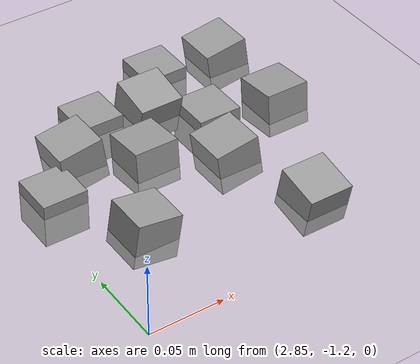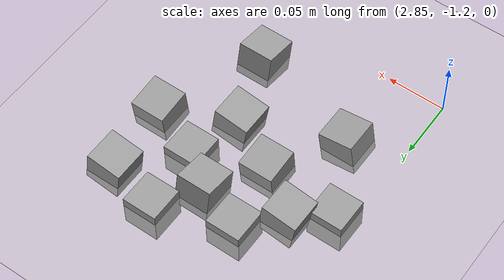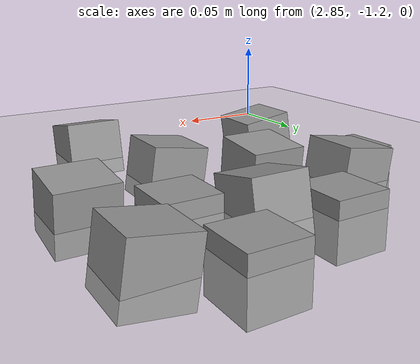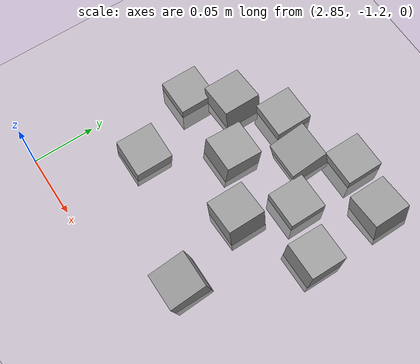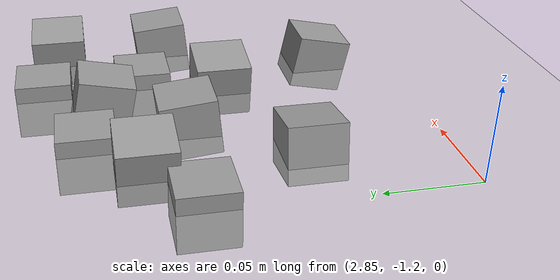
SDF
<sdf version="1.7">
 <world name="default">
  <model name="ground_plane">
   <static>1</static>
   <link name="link">
    <collision name="collision">
     <geometry><plane><normal>0 0 1</normal><size>100 100</size></plane></geometry>
     <surface><friction><ode><mu>100</mu><mu2>50</mu2></ode></friction></surface>
    </collision>
    <visual name="visual">
     <cast_shadows>0</cast_shadows>
     <geometry><plane><normal>0 0 1</normal><size>100 100</size></plane></geometry>
     <material>
      <script><uri>file://media/materials/scripts/gazebo.material</uri><name>Gazebo/Grey</name></script>
     </material>
    </visual>
   </link>
  </model>
  <model name="stone_road_12">
   <link name="link_0_clone_12">
    <inertial>
     <mass>1</mass>
     <inertia>
      <ixx>0.166667</ixx>
      <ixy>0</ixy>
      <ixz>0</ixz>
      <iyy>0.166667</iyy>
      <iyz>0</iyz>
      <izz>0.166667</izz>
     </inertia>
    </inertial>
    <pose>0.142624 -0.262715 0.003778 0.2 -0 0</pose>
    <kinematic>1</kinematic>
    <visual name="visual">
     <geometry><box><size>0.03 0.03 0.03</size></box></geometry>
     <material>
      <lighting>1</lighting>
      <script><uri>file://media/materials/scripts/gazebo.material</uri><name>Gazebo/Grey</name></script>
      <shader type="pixel"><normal_map>__default__</normal_map></shader>
      <ambient>0.3 0.3 0.3 1</ambient>
      <diffuse>0.7 0.7 0.7 1</diffuse>
      <specular>0.01 0.01 0.01 1</specular>
      <emissive>0 0 0 1</emissive>
     </material>
    </visual>
    <collision name="collision">
     <geometry><box><size>0.03 0.03 0.03</size></box></geometry>
     <surface>
      <friction>
       <ode><mu>1</mu><mu2>1</mu2><fdir1>0 0 0</fdir1><slip1>0</slip1><slip2>0</slip2></ode>
       <torsional>
        <coefficient>1</coefficient>
        <patch_radius>0</patch_radius>
        <surface_radius>0</surface_radius>
        <use_patch_radius>1</use_patch_radius>
        <ode><slip>0</slip></ode>
       </torsional>
      </friction>
      <bounce><restitution_coefficient>0</restitution_coefficient><threshold>1e+06</threshold></bounce>
      <contact>
       <collide_without_contact>0</collide_without_contact>
       <collide_without_contact_bitmask>1</collide_without_contact_bitmask>
       <collide_bitmask>1</collide_bitmask>
       <ode>
        <soft_cfm>0</soft_cfm>
        <soft_erp>0.2</soft_erp>
        <kp>1e+13</kp>
        <kd>1</kd>
        <max_vel>0.01</max_vel>
        <min_depth>0</min_depth>
       </ode>
       <bullet>
        <split_impulse>1</split_impulse>
        <split_impulse_penetration_threshold>-0.01</split_impulse_penetration_threshold>
        <soft_cfm>0</soft_cfm>
        <soft_erp>0.2</soft_erp>
        <kp>1e+13</kp>
        <kd>1</kd>
       </bullet>
      </contact>
     </surface>
    </collision>
   </link>
   <link name="link_0_clone_13">
    <inertial>
     <mass>1</mass>
     <inertia>
      <ixx>0.166667</ixx>
      <ixy>0</ixy>
      <ixz>0</ixz>
      <iyy>0.166667</iyy>
      <iyz>0</iyz>
      <izz>0.166667</izz>
     </inertia>
    </inertial>
    <pose>0.107601 -0.134881 0.003778 0.2 -0 0</pose>
    <kinematic>1</kinematic>
    <visual name="visual">
     <geometry><box><size>0.03 0.03 0.03</size></box></geometry>
     <material>
      <lighting>1</lighting>
      <script><uri>file://media/materials/scripts/gazebo.material</uri><name>Gazebo/Grey</name></script>
      <shader type="pixel"><normal_map>__default__</normal_map></shader>
      <ambient>0.3 0.3 0.3 1</ambient>
      <diffuse>0.7 0.7 0.7 1</diffuse>
      <specular>0.01 0.01 0.01 1</specular>
      <emissive>0 0 0 1</emissive>
     </material>
    </visual>
    <collision name="collision">
     <geometry><box><size>0.03 0.03 0.03</size></box></geometry>
     <surface>
      <friction>
       <ode><mu>1</mu><mu2>1</mu2><fdir1>0 0 0</fdir1><slip1>0</slip1><slip2>0</slip2></ode>
       <torsional>
        <coefficient>1</coefficient>
        <patch_radius>0</patch_radius>
        <surface_radius>0</surface_radius>
        <use_patch_radius>1</use_patch_radius>
        <ode><slip>0</slip></ode>
       </torsional>
      </friction>
      <bounce><restitution_coefficient>0</restitution_coefficient><threshold>1e+06</threshold></bounce>
      <contact>
       <collide_without_contact>0</collide_without_contact>
       <collide_without_contact_bitmask>1</collide_without_contact_bitmask>
       <collide_bitmask>1</collide_bitmask>
       <ode>
        <soft_cfm>0</soft_cfm>
        <soft_erp>0.2</soft_erp>
        <kp>1e+13</kp>
        <kd>1</kd>
        <max_vel>0.01</max_vel>
        <min_depth>0</min_depth>
       </ode>
       <bullet>
        <split_impulse>1</split_impulse>
        <split_impulse_penetration_threshold>-0.01</split_impulse_penetration_threshold>
        <soft_cfm>0</soft_cfm>
        <soft_erp>0.2</soft_erp>
        <kp>1e+13</kp>
        <kd>1</kd>
       </bullet>
      </contact>
     </surface>
    </collision>
   </link>
   <link name="link_0_clone_2_clone_2_clone_13_clone_clone_11">
    <inertial>
     <mass>1</mass>
     <inertia>
      <ixx>0.166667</ixx>
      <ixy>0</ixy>
      <ixz>0</ixz>
      <iyy>0.166667</iyy>
      <iyz>0</iyz>
      <izz>0.166667</izz>
     </inertia>
    </inertial>
    <pose>0.178889 -0.173779 0.003778 -0.1 0 0</pose>
    <kinematic>1</kinematic>
    <visual name="visual">
     <geometry><box><size>0.03 0.03 0.03</size></box></geometry>
     <material>
      <lighting>1</lighting>
      <script><uri>file://media/materials/scripts/gazebo.material</uri><name>Gazebo/Grey</name></script>
      <shader type="pixel"><normal_map>__default__</normal_map></shader>
      <ambient>0.3 0.3 0.3 1</ambient>
      <diffuse>0.7 0.7 0.7 1</diffuse>
      <specular>0.01 0.01 0.01 1</specular>
      <emissive>0 0 0 1</emissive>
     </material>
    </visual>
    <collision name="collision">
     <geometry><box><size>0.03 0.03 0.03</size></box></geometry>
     <surface>
      <friction>
       <ode><mu>1</mu><mu2>1</mu2><fdir1>0 0 0</fdir1><slip1>0</slip1><slip2>0</slip2></ode>
       <torsional>
        <coefficient>1</coefficient>
        <patch_radius>0</patch_radius>
        <surface_radius>0</surface_radius>
        <use_patch_radius>1</use_patch_radius>
        <ode><slip>0</slip></ode>
       </torsional>
      </friction>
      <bounce><restitution_coefficient>0</restitution_coefficient><threshold>1e+06</threshold></bounce>
      <contact>
       <collide_without_contact>0</collide_without_contact>
       <collide_without_contact_bitmask>1</collide_without_contact_bitmask>
       <collide_bitmask>1</collide_bitmask>
       <ode>
        <soft_cfm>0</soft_cfm>
        <soft_erp>0.2</soft_erp>
        <kp>1e+13</kp>
        <kd>1</kd>
        <max_vel>0.01</max_vel>
        <min_depth>0</min_depth>
       </ode>
       <bullet>
        <split_impulse>1</split_impulse>
        <split_impulse_penetration_threshold>-0.01</split_impulse_penetration_threshold>
        <soft_cfm>0</soft_cfm>
        <soft_erp>0.2</soft_erp>
        <kp>1e+13</kp>
        <kd>1</kd>
       </bullet>
      </contact>
     </surface>
    </collision>
   </link>
   <link name="link_0_clone_2_clone_2_clone_13_clone_clone_12">
    <inertial>
     <mass>1</mass>
     <inertia>
      <ixx>0.166667</ixx>
      <ixy>0</ixy>
      <ixz>0</ixz>
      <iyy>0.166667</iyy>
      <iyz>0</iyz>
      <izz>0.166667</izz>
     </inertia>
    </inertial>
    <pose>0.078701 -0.177208 0.003778 -0.1 0 0</pose>
    <kinematic>1</kinematic>
    <visual name="visual">
     <geometry><box><size>0.03 0.03 0.03</size></box></geometry>
     <material>
      <lighting>1</lighting>
      <script><uri>file://media/materials/scripts/gazebo.material</uri><name>Gazebo/Grey</name></script>
      <shader type="pixel"><normal_map>__default__</normal_map></shader>
      <ambient>0.3 0.3 0.3 1</ambient>
      <diffuse>0.7 0.7 0.7 1</diffuse>
      <specular>0.01 0.01 0.01 1</specular>
      <emissive>0 0 0 1</emissive>
     </material>
    </visual>
    <collision name="collision">
     <geometry><box><size>0.03 0.03 0.03</size></box></geometry>
     <surface>
      <friction>
       <ode><mu>1</mu><mu2>1</mu2><fdir1>0 0 0</fdir1><slip1>0</slip1><slip2>0</slip2></ode>
       <torsional>
        <coefficient>1</coefficient>
        <patch_radius>0</patch_radius>
        <surface_radius>0</surface_radius>
        <use_patch_radius>1</use_patch_radius>
        <ode><slip>0</slip></ode>
       </torsional>
      </friction>
      <bounce><restitution_coefficient>0</restitution_coefficient><threshold>1e+06</threshold></bounce>
      <contact>
       <collide_without_contact>0</collide_without_contact>
       <collide_without_contact_bitmask>1</collide_without_contact_bitmask>
       <collide_bitmask>1</collide_bitmask>
       <ode>
        <soft_cfm>0</soft_cfm>
        <soft_erp>0.2</soft_erp>
        <kp>1e+13</kp>
        <kd>1</kd>
        <max_vel>0.01</max_vel>
        <min_depth>0</min_depth>
       </ode>
       <bullet>
        <split_impulse>1</split_impulse>
        <split_impulse_penetration_threshold>-0.01</split_impulse_penetration_threshold>
        <soft_cfm>0</soft_cfm>
        <soft_erp>0.2</soft_erp>
        <kp>1e+13</kp>
        <kd>1</kd>
       </bullet>
      </contact>
     </surface>
    </collision>
   </link>
   <link name="link_0_clone_2_clone_2_clone_13_clone_clone_16_clone_15">
    <inertial>
     <mass>1</mass>
     <inertia>
      <ixx>0.166667</ixx>
      <ixy>0</ixy>
      <ixz>0</ixz>
      <iyy>0.166667</iyy>
      <iyz>0</iyz>
      <izz>0.166667</izz>
     </inertia>
    </inertial>
    <pose>0.133032 -0.103459 -0.006222 0 -0 0</pose>
    <kinematic>1</kinematic>
    <visual name="visual">
     <geometry><box><size>0.03 0.03 0.03</size></box></geometry>
     <material>
      <lighting>1</lighting>
      <script><uri>file://media/materials/scripts/gazebo.material</uri><name>Gazebo/Grey</name></script>
      <shader type="pixel"><normal_map>__default__</normal_map></shader>
      <ambient>0.3 0.3 0.3 1</ambient>
      <diffuse>0.7 0.7 0.7 1</diffuse>
      <specular>0.01 0.01 0.01 1</specular>
      <emissive>0 0 0 1</emissive>
     </material>
    </visual>
    <collision name="collision">
     <geometry><box><size>0.03 0.03 0.03</size></box></geometry>
     <surface>
      <friction>
       <ode><mu>1</mu><mu2>1</mu2><fdir1>0 0 0</fdir1><slip1>0</slip1><slip2>0</slip2></ode>
       <torsional>
        <coefficient>1</coefficient>
        <patch_radius>0</patch_radius>
        <surface_radius>0</surface_radius>
        <use_patch_radius>1</use_patch_radius>
        <ode><slip>0</slip></ode>
       </torsional>
      </friction>
      <bounce><restitution_coefficient>0</restitution_coefficient><threshold>1e+06</threshold></bounce>
      <contact>
       <collide_without_contact>0</collide_without_contact>
       <collide_without_contact_bitmask>1</collide_without_contact_bitmask>
       <collide_bitmask>1</collide_bitmask>
       <ode>
        <soft_cfm>0</soft_cfm>
        <soft_erp>0.2</soft_erp>
        <kp>1e+13</kp>
        <kd>1</kd>
        <max_vel>0.01</max_vel>
        <min_depth>0</min_depth>
       </ode>
       <bullet>
        <split_impulse>1</split_impulse>
        <split_impulse_penetration_threshold>-0.01</split_impulse_penetration_threshold>
        <soft_cfm>0</soft_cfm>
        <soft_erp>0.2</soft_erp>
        <kp>1e+13</kp>
        <kd>1</kd>
       </bullet>
      </contact>
     </surface>
    </collision>
   </link>
   <link name="link_0_clone_2_clone_2_clone_13_clone_clone_16_clone_16">
    <inertial>
     <mass>1</mass>
     <inertia>
      <ixx>0.166667</ixx>
      <ixy>0</ixy>
      <ixz>0</ixz>
      <iyy>0.166667</iyy>
      <iyz>0</iyz>
      <izz>0.166667</izz>
     </inertia>
    </inertial>
    <pose>0.071475 -0.124425 -0.006222 0 -0 0</pose>
    <kinematic>1</kinematic>
    <visual name="visual">
     <geometry><box><size>0.03 0.03 0.03</size></box></geometry>
     <material>
      <lighting>1</lighting>
      <script><uri>file://media/materials/scripts/gazebo.material</uri><name>Gazebo/Grey</name></script>
      <shader type="pixel"><normal_map>__default__</normal_map></shader>
      <ambient>0.3 0.3 0.3 1</ambient>
      <diffuse>0.7 0.7 0.7 1</diffuse>
      <specular>0.01 0.01 0.01 1</specular>
      <emissive>0 0 0 1</emissive>
     </material>
    </visual>
    <collision name="collision">
     <geometry><box><size>0.03 0.03 0.03</size></box></geometry>
     <surface>
      <friction>
       <ode><mu>1</mu><mu2>1</mu2><fdir1>0 0 0</fdir1><slip1>0</slip1><slip2>0</slip2></ode>
       <torsional>
        <coefficient>1</coefficient>
        <patch_radius>0</patch_radius>
        <surface_radius>0</surface_radius>
        <use_patch_radius>1</use_patch_radius>
        <ode><slip>0</slip></ode>
       </torsional>
      </friction>
      <bounce><restitution_coefficient>0</restitution_coefficient><threshold>1e+06</threshold></bounce>
      <contact>
       <collide_without_contact>0</collide_without_contact>
       <collide_without_contact_bitmask>1</collide_without_contact_bitmask>
       <collide_bitmask>1</collide_bitmask>
       <ode>
        <soft_cfm>0</soft_cfm>
        <soft_erp>0.2</soft_erp>
        <kp>1e+13</kp>
        <kd>1</kd>
        <max_vel>0.01</max_vel>
        <min_depth>0</min_depth>
       </ode>
       <bullet>
        <split_impulse>1</split_impulse>
        <split_impulse_penetration_threshold>-0.01</split_impulse_penetration_threshold>
        <soft_cfm>0</soft_cfm>
        <soft_erp>0.2</soft_erp>
        <kp>1e+13</kp>
        <kd>1</kd>
       </bullet>
      </contact>
     </surface>
    </collision>
   </link>
   <link name="link_0_clone_2_clone_2_clone_13_clone_clone_16_clone_17">
    <inertial>
     <mass>1</mass>
     <inertia>
      <ixx>0.166667</ixx>
      <ixy>0</ixy>
      <ixz>0</ixz>
      <iyy>0.166667</iyy>
      <iyz>0</iyz>
      <izz>0.166667</izz>
     </inertia>
    </inertial>
    <pose>0.014877 -0.175392 -0.006222 0 -0 0</pose>
    <kinematic>1</kinematic>
    <visual name="visual">
     <geometry><box><size>0.03 0.03 0.03</size></box></geometry>
     <material>
      <lighting>1</lighting>
      <script><uri>file://media/materials/scripts/gazebo.material</uri><name>Gazebo/Grey</name></script>
      <shader type="pixel"><normal_map>__default__</normal_map></shader>
      <ambient>0.3 0.3 0.3 1</ambient>
      <diffuse>0.7 0.7 0.7 1</diffuse>
      <specular>0.01 0.01 0.01 1</specular>
      <emissive>0 0 0 1</emissive>
     </material>
    </visual>
    <collision name="collision">
     <geometry><box><size>0.03 0.03 0.03</size></box></geometry>
     <surface>
      <friction>
       <ode><mu>1</mu><mu2>1</mu2><fdir1>0 0 0</fdir1><slip1>0</slip1><slip2>0</slip2></ode>
       <torsional>
        <coefficient>1</coefficient>
        <patch_radius>0</patch_radius>
        <surface_radius>0</surface_radius>
        <use_patch_radius>1</use_patch_radius>
        <ode><slip>0</slip></ode>
       </torsional>
      </friction>
      <bounce><restitution_coefficient>0</restitution_coefficient><threshold>1e+06</threshold></bounce>
      <contact>
       <collide_without_contact>0</collide_without_contact>
       <collide_without_contact_bitmask>1</collide_without_contact_bitmask>
       <collide_bitmask>1</collide_bitmask>
       <ode>
        <soft_cfm>0</soft_cfm>
        <soft_erp>0.2</soft_erp>
        <kp>1e+13</kp>
        <kd>1</kd>
        <max_vel>0.01</max_vel>
        <min_depth>0</min_depth>
       </ode>
       <bullet>
        <split_impulse>1</split_impulse>
        <split_impulse_penetration_threshold>-0.01</split_impulse_penetration_threshold>
        <soft_cfm>0</soft_cfm>
        <soft_erp>0.2</soft_erp>
        <kp>1e+13</kp>
        <kd>1</kd>
       </bullet>
      </contact>
     </surface>
    </collision>
   </link>
   <link name="link_0_clone_2_clone_2_clone_13_clone_clone_16_clone_18">
    <inertial>
     <mass>1</mass>
     <inertia>
      <ixx>0.166667</ixx>
      <ixy>0</ixy>
      <ixz>0</ixz>
      <iyy>0.166667</iyy>
      <iyz>0</iyz>
      <izz>0.166667</izz>
     </inertia>
    </inertial>
    <pose>0.137197 -0.158693 -0.006222 0 -0 0</pose>
    <kinematic>1</kinematic>
    <visual name="visual">
     <geometry><box><size>0.03 0.03 0.03</size></box></geometry>
     <material>
      <lighting>1</lighting>
      <script><uri>file://media/materials/scripts/gazebo.material</uri><name>Gazebo/Grey</name></script>
      <shader type="pixel"><normal_map>__default__</normal_map></shader>
      <ambient>0.3 0.3 0.3 1</ambient>
      <diffuse>0.7 0.7 0.7 1</diffuse>
      <specular>0.01 0.01 0.01 1</specular>
      <emissive>0 0 0 1</emissive>
     </material>
    </visual>
    <collision name="collision">
     <geometry><box><size>0.03 0.03 0.03</size></box></geometry>
     <surface>
      <friction>
       <ode><mu>1</mu><mu2>1</mu2><fdir1>0 0 0</fdir1><slip1>0</slip1><slip2>0</slip2></ode>
       <torsional>
        <coefficient>1</coefficient>
        <patch_radius>0</patch_radius>
        <surface_radius>0</surface_radius>
        <use_patch_radius>1</use_patch_radius>
        <ode><slip>0</slip></ode>
       </torsional>
      </friction>
      <bounce><restitution_coefficient>0</restitution_coefficient><threshold>1e+06</threshold></bounce>
      <contact>
       <collide_without_contact>0</collide_without_contact>
       <collide_without_contact_bitmask>1</collide_without_contact_bitmask>
       <collide_bitmask>1</collide_bitmask>
       <ode>
        <soft_cfm>0</soft_cfm>
        <soft_erp>0.2</soft_erp>
        <kp>1e+13</kp>
        <kd>1</kd>
        <max_vel>0.01</max_vel>
        <min_depth>0</min_depth>
       </ode>
       <bullet>
        <split_impulse>1</split_impulse>
        <split_impulse_penetration_threshold>-0.01</split_impulse_penetration_threshold>
        <soft_cfm>0</soft_cfm>
        <soft_erp>0.2</soft_erp>
        <kp>1e+13</kp>
        <kd>1</kd>
       </bullet>
      </contact>
     </surface>
    </collision>
   </link>
   <link name="link_0_clone_2_clone_2_clone_4">
    <inertial>
     <mass>1</mass>
     <inertia>
      <ixx>0.166667</ixx>
      <ixy>0</ixy>
      <ixz>0</ixz>
      <iyy>0.166667</iyy>
      <iyz>0</iyz>
      <izz>0.166667</izz>
     </inertia>
    </inertial>
    <pose>0.042048 -0.151731 0.003778 0 -0.15 0</pose>
    <kinematic>1</kinematic>
    <visual name="visual">
     <geometry><box><size>0.03 0.03 0.03</size></box></geometry>
     <material>
      <lighting>1</lighting>
      <script><uri>file://media/materials/scripts/gazebo.material</uri><name>Gazebo/Grey</name></script>
      <shader type="pixel"><normal_map>__default__</normal_map></shader>
      <ambient>0.3 0.3 0.3 1</ambient>
      <diffuse>0.7 0.7 0.7 1</diffuse>
      <specular>0.01 0.01 0.01 1</specular>
      <emissive>0 0 0 1</emissive>
     </material>
    </visual>
    <collision name="collision">
     <geometry><box><size>0.03 0.03 0.03</size></box></geometry>
     <surface>
      <friction>
       <ode><mu>1</mu><mu2>1</mu2><fdir1>0 0 0</fdir1><slip1>0</slip1><slip2>0</slip2></ode>
       <torsional>
        <coefficient>1</coefficient>
        <patch_radius>0</patch_radius>
        <surface_radius>0</surface_radius>
        <use_patch_radius>1</use_patch_radius>
        <ode><slip>0</slip></ode>
       </torsional>
      </friction>
      <bounce><restitution_coefficient>0</restitution_coefficient><threshold>1e+06</threshold></bounce>
      <contact>
       <collide_without_contact>0</collide_without_contact>
       <collide_without_contact_bitmask>1</collide_without_contact_bitmask>
       <collide_bitmask>1</collide_bitmask>
       <ode>
        <soft_cfm>0</soft_cfm>
        <soft_erp>0.2</soft_erp>
        <kp>1e+13</kp>
        <kd>1</kd>
        <max_vel>0.01</max_vel>
        <min_depth>0</min_depth>
       </ode>
       <bullet>
        <split_impulse>1</split_impulse>
        <split_impulse_penetration_threshold>-0.01</split_impulse_penetration_threshold>
        <soft_cfm>0</soft_cfm>
        <soft_erp>0.2</soft_erp>
        <kp>1e+13</kp>
        <kd>1</kd>
       </bullet>
      </contact>
     </surface>
    </collision>
   </link>
   <link name="link_0_clone_2_clone_2_clone_7">
    <inertial>
     <mass>1</mass>
     <inertia>
      <ixx>0.166667</ixx>
      <ixy>0</ixy>
      <ixz>0</ixz>
      <iyy>0.166667</iyy>
      <iyz>0</iyz>
      <izz>0.166667</izz>
     </inertia>
    </inertial>
    <pose>0.175499 -0.112442 0.003778 0 -0.15 0</pose>
    <kinematic>1</kinematic>
    <visual name="visual">
     <geometry><box><size>0.03 0.03 0.03</size></box></geometry>
     <material>
      <lighting>1</lighting>
      <script><uri>file://media/materials/scripts/gazebo.material</uri><name>Gazebo/Grey</name></script>
      <shader type="pixel"><normal_map>__default__</normal_map></shader>
      <ambient>0.3 0.3 0.3 1</ambient>
      <diffuse>0.7 0.7 0.7 1</diffuse>
      <specular>0.01 0.01 0.01 1</specular>
      <emissive>0 0 0 1</emissive>
     </material>
    </visual>
    <collision name="collision">
     <geometry><box><size>0.03 0.03 0.03</size></box></geometry>
     <surface>
      <friction>
       <ode><mu>1</mu><mu2>1</mu2><fdir1>0 0 0</fdir1><slip1>0</slip1><slip2>0</slip2></ode>
       <torsional>
        <coefficient>1</coefficient>
        <patch_radius>0</patch_radius>
        <surface_radius>0</surface_radius>
        <use_patch_radius>1</use_patch_radius>
        <ode><slip>0</slip></ode>
       </torsional>
      </friction>
      <bounce><restitution_coefficient>0</restitution_coefficient><threshold>1e+06</threshold></bounce>
      <contact>
       <collide_without_contact>0</collide_without_contact>
       <collide_without_contact_bitmask>1</collide_without_contact_bitmask>
       <collide_bitmask>1</collide_bitmask>
       <ode>
        <soft_cfm>0</soft_cfm>
        <soft_erp>0.2</soft_erp>
        <kp>1e+13</kp>
        <kd>1</kd>
        <max_vel>0.01</max_vel>
        <min_depth>0</min_depth>
       </ode>
       <bullet>
        <split_impulse>1</split_impulse>
        <split_impulse_penetration_threshold>-0.01</split_impulse_penetration_threshold>
        <soft_cfm>0</soft_cfm>
        <soft_erp>0.2</soft_erp>
        <kp>1e+13</kp>
        <kd>1</kd>
       </bullet>
      </contact>
     </surface>
    </collision>
   </link>
   <link name="link_0_clone_2_clone_2_clone_8">
    <inertial>
     <mass>1</mass>
     <inertia>
      <ixx>0.166667</ixx>
      <ixy>0</ixy>
      <ixz>0</ixz>
      <iyy>0.166667</iyy>
      <iyz>0</iyz>
      <izz>0.166667</izz>
     </inertia>
    </inertial>
    <pose>0.122141 -0.201696 0.003778 0 -0.15 0</pose>
    <kinematic>1</kinematic>
    <visual name="visual">
     <geometry><box><size>0.03 0.03 0.03</size></box></geometry>
     <material>
      <lighting>1</lighting>
      <script><uri>file://media/materials/scripts/gazebo.material</uri><name>Gazebo/Grey</name></script>
      <shader type="pixel"><normal_map>__default__</normal_map></shader>
      <ambient>0.3 0.3 0.3 1</ambient>
      <diffuse>0.7 0.7 0.7 1</diffuse>
      <specular>0.01 0.01 0.01 1</specular>
      <emissive>0 0 0 1</emissive>
     </material>
    </visual>
    <collision name="collision">
     <geometry><box><size>0.03 0.03 0.03</size></box></geometry>
     <surface>
      <friction>
       <ode><mu>1</mu><mu2>1</mu2><fdir1>0 0 0</fdir1><slip1>0</slip1><slip2>0</slip2></ode>
       <torsional>
        <coefficient>1</coefficient>
        <patch_radius>0</patch_radius>
        <surface_radius>0</surface_radius>
        <use_patch_radius>1</use_patch_radius>
        <ode><slip>0</slip></ode>
       </torsional>
      </friction>
      <bounce><restitution_coefficient>0</restitution_coefficient><threshold>1e+06</threshold></bounce>
      <contact>
       <collide_without_contact>0</collide_without_contact>
       <collide_without_contact_bitmask>1</collide_without_contact_bitmask>
       <collide_bitmask>1</collide_bitmask>
       <ode>
        <soft_cfm>0</soft_cfm>
        <soft_erp>0.2</soft_erp>
        <kp>1e+13</kp>
        <kd>1</kd>
        <max_vel>0.01</max_vel>
        <min_depth>0</min_depth>
       </ode>
       <bullet>
        <split_impulse>1</split_impulse>
        <split_impulse_penetration_threshold>-0.01</split_impulse_penetration_threshold>
        <soft_cfm>0</soft_cfm>
        <soft_erp>0.2</soft_erp>
        <kp>1e+13</kp>
        <kd>1</kd>
       </bullet>
      </contact>
     </surface>
    </collision>
   </link>
   <link name="link_0_clone_2_clone_7">
    <inertial>
     <mass>1</mass>
     <inertia>
      <ixx>0.166667</ixx>
      <ixy>0</ixy>
      <ixz>0</ixz>
      <iyy>0.166667</iyy>
      <iyz>0</iyz>
      <izz>0.166667</izz>
     </inertia>
    </inertial>
    <pose>0.04255 -0.232691 0.003778 0 0.15 0</pose>
    <kinematic>1</kinematic>
    <visual name="visual">
     <geometry><box><size>0.03 0.03 0.03</size></box></geometry>
     <material>
      <lighting>1</lighting>
      <script><uri>file://media/materials/scripts/gazebo.material</uri><name>Gazebo/Grey</name></script>
      <shader type="pixel"><normal_map>__default__</normal_map></shader>
      <ambient>0.3 0.3 0.3 1</ambient>
      <diffuse>0.7 0.7 0.7 1</diffuse>
      <specular>0.01 0.01 0.01 1</specular>
      <emissive>0 0 0 1</emissive>
     </material>
    </visual>
    <collision name="collision">
     <geometry><box><size>0.03 0.03 0.03</size></box></geometry>
     <surface>
      <friction>
       <ode><mu>1</mu><mu2>1</mu2><fdir1>0 0 0</fdir1><slip1>0</slip1><slip2>0</slip2></ode>
       <torsional>
        <coefficient>1</coefficient>
        <patch_radius>0</patch_radius>
        <surface_radius>0</surface_radius>
        <use_patch_radius>1</use_patch_radius>
        <ode><slip>0</slip></ode>
       </torsional>
      </friction>
      <bounce><restitution_coefficient>0</restitution_coefficient><threshold>1e+06</threshold></bounce>
      <contact>
       <collide_without_contact>0</collide_without_contact>
       <collide_without_contact_bitmask>1</collide_without_contact_bitmask>
       <collide_bitmask>1</collide_bitmask>
       <ode>
        <soft_cfm>0</soft_cfm>
        <soft_erp>0.2</soft_erp>
        <kp>1e+13</kp>
        <kd>1</kd>
        <max_vel>0.01</max_vel>
        <min_depth>0</min_depth>
       </ode>
       <bullet>
        <split_impulse>1</split_impulse>
        <split_impulse_penetration_threshold>-0.01</split_impulse_penetration_threshold>
        <soft_cfm>0</soft_cfm>
        <soft_erp>0.2</soft_erp>
        <kp>1e+13</kp>
        <kd>1</kd>
       </bullet>
      </contact>
     </surface>
    </collision>
   </link>
   <static>0</static>
   <pose>2.85052 -0.895534 -0 0 -0 0</pose>
  </model>
 </world>
</sdf>
